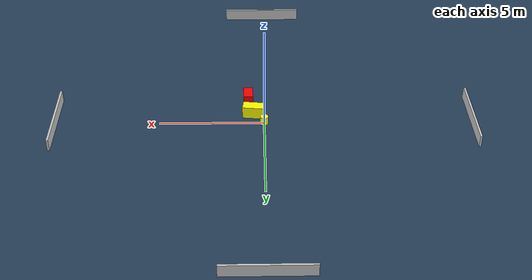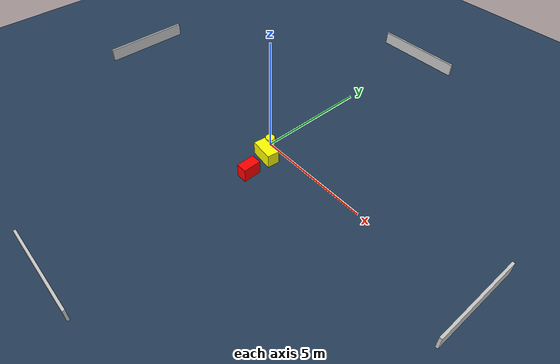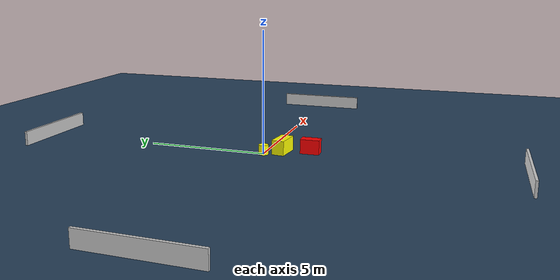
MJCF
<?xml version="1.0" ?>
<mujoco model="generated_environment">
  <option timestep="0.01" integrator="RK4" cone="elliptic"/>
  <default>
    <geom density="1"/>
  </default>
  <asset>
    <texture builtin="gradient" height="3072" name="skybox" rgb1="0.3 0.5 0.7" rgb2="0 0 0" type="skybox" width="512"/>
    <texture builtin="checker" height="300" name="groundplane" rgb1="0.2 0.3 0.4" rgb2="0.1 0.2 0.3" type="2d" width="300"/>
    <material name="groundplane" reflectance="0.2" texrepeat="5 5" texture="groundplane"/>
  </asset>
  <worldbody>
    <light dir="0 0 -1" directional="true" pos="0 0 1.5"/>
    <geom condim="3" friction="0.5 0.005 0.001" material="groundplane" name="floor" pos="0 0 0" size="0 0 0.05" type="plane"/>
    <body name="walls">
      <geom name="wall_1" condim="4" pos="-10.0 0.0 0.3" rgba="0.800000011920929 0.800000011920929 0.800000011920929 1.0" size="0.05 2.0 0.3" type="box"/>
      <geom name="wall_2" condim="4" pos="10.0 0.0 0.3" rgba="0.800000011920929 0.800000011920929 0.800000011920929 1.0" size="0.05 2.0 0.3" type="box"/>
      <geom name="wall_3" condim="4" pos="0.0 -10.0 0.3" rgba="0.800000011920929 0.800000011920929 0.800000011920929 1.0" size="2.0 0.05 0.3" type="box"/>
      <geom name="wall_4" condim="4" pos="0.0 10.0 0.3" rgba="0.800000011920929 0.800000011920929 0.800000011920929 1.0" size="2.0 0.05 0.3" type="box"/>
    </body>
    <body name="robot">
      <joint name="joint_x" type="slide" pos="0 0 0" axis="1 0 0"/>
      <joint name="joint_y" type="slide" pos="0 0 0" axis="0 1 0"/>
      <geom name="robot" type="cylinder" pos="0.0 0.0 0.2" size="0.2 0.2 0.0" mass="5.0" friction="1.0 0.005 0.0001" condim="4" rgba="1.0 1.0 0.0 1.0"/>
    </body>
    <body name="obstacle_1_movable">
      <geom name="obstacle_1_movable" condim="4" pos="0.5131486573831087 -0.6475722406834277 0.3" euler="0 0 173.2874773723267" friction="0.0 0.005 0.001" rgba="1.0 1.0 0.0 1.0" size="0.5072583434075134 0.2586625528850789 0.3" type="box" mass="0.1"/>
      <joint type="free"/>
    </body>
    <body name="obstacle_2_static">
      <geom name="obstacle_2_static" condim="4" pos="0.7647804979802338 -1.76798822628974 0.3" euler="0 0 181.26944124989853" friction="0.0 0.005 0.001" rgba="1.0 0.0 0.0 1.0" size="0.2282094309032872 0.3923963330661402 0.3" type="box"/>
    </body>
  </worldbody>
  <actuator>
    <motor name="actuator_x" joint="joint_x" gear="1" ctrlrange="-1 1"/>
    <motor name="actuator_y" joint="joint_y" gear="1" ctrlrange="-1 1"/>
  </actuator>
</mujoco>
